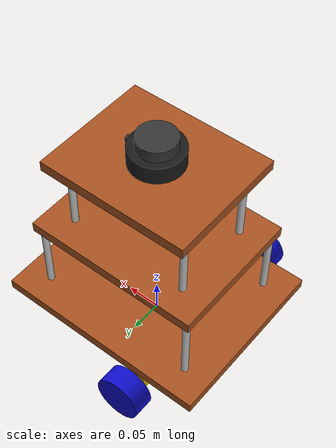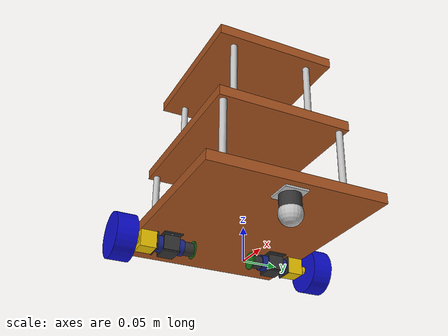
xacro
<?xml version="1.0"?>
<robot name="wobble" xmlns:xacro="http://www.ros.org/wiki/xacro">

  <!-- PARAMETERS                                                        -->

  <!-- Base layer dimensions (bottom plate) -->
  <xacro:property name="base_plate_length"    value="0.32"/>
  <xacro:property name="base_plate_width"     value="0.26"/>

  <!-- Second layer dimensions (middle plate - stepped between base and top) -->
  <xacro:property name="second_plate_length"  value="0.26"/>
  <xacro:property name="second_plate_width"   value="0.20"/>

  <!-- Top layer dimensions (third plate) -->
  <xacro:property name="top_plate_length"     value="0.22"/>
  <xacro:property name="top_plate_width"      value="0.18"/>

  <xacro:property name="plate_length"         value="${base_plate_length}"/>
  <xacro:property name="plate_width"          value="${base_plate_width}"/>
  <xacro:property name="plate_thickness"      value="0.015"/>

  <xacro:property name="layer_gap"       value="0.12"/>

  <xacro:property name="rod_radius"      value="0.005"/>

  <xacro:property name="wheel_radius"    value="0.0335"/>
  <xacro:property name="wheel_width"     value="0.03"/>

  <!-- wheel joint origin (relative to base_link) -->
  <xacro:property name="wheel_x"         value="-0.07"/>
  <xacro:property name="wheel_y"         value="0.155"/>

  <!-- laser joint origin relative to top_layer -->
  <xacro:property name="laser_x"         value="0.0"/>
  <xacro:property name="laser_y"         value="0.0"/>
  <xacro:property name="laser_z"         value="0.025"/>
  <xacro:property name="laser_roll"      value="0.0"/>
  <xacro:property name="laser_pitch"     value="0.0"/>
  <xacro:property name="laser_yaw"       value="0.0"/>

  <!-- Encoder gear DC motor dimensions (JGA25-370 pro-range style) -->
  <xacro:property name="coupler_len"     value="0.010"/>  <!-- brass shaft coupler     -->
  <xacro:property name="gearbox_y"       value="0.025"/>  <!-- gearbox depth along Y  -->
  <xacro:property name="gearbox_sq"      value="0.025"/>  <!-- gearbox W/H (square)   -->
  <xacro:property name="motor_radius"    value="0.012"/>  <!-- motor can radius        -->
  <xacro:property name="motor_len"       value="0.042"/>  <!-- motor can length        -->
  <xacro:property name="encoder_radius"  value="0.010"/>  <!-- encoder drum radius     -->
  <xacro:property name="encoder_len"     value="0.015"/>  <!-- encoder drum length     -->
  <!-- Outer face of gearbox stops at wheel inner face minus coupler_len (no overlap) -->
  <xacro:property name="gearbox_outer_y" value="${wheel_y - wheel_width/2 - coupler_len}"/>

  <!-- Motor shaft vertical offset so motors mount under the base plate -->
  <xacro:property name="motor_z"         value="${-plate_thickness/2 - gearbox_sq/2}"/>
  <!-- Height of base_link plate centre above base_footprint (ground) -->
  <xacro:property name="chassis_z"       value="${wheel_radius - motor_z}"/>
  <!-- Caster ball radius -->
  <xacro:property name="caster_radius"   value="${wheel_radius / 2.0}"/>

  <!-- MATERIALS  (RViz)                                                 -->

  <material name="wood">
    <color rgba="0.65 0.32 0.12 1"/>
  </material>

  <material name="metal">
    <color rgba="0.75 0.75 0.75 1"/>
  </material>

  <material name="blue">
    <color rgba="0.05 0.05 0.8 1"/>
  </material>

  <material name="black">
    <color rgba="0.1 0.1 0.1 1"/>
  </material>

  <material name="dark_grey">
    <color rgba="0.20 0.20 0.20 1"/>
  </material>

  <material name="yellow">
    <color rgba="0.90 0.75 0.00 1"/>
  </material>

  <material name="motor_blue">
    <color rgba="0.10 0.15 0.55 1"/>
  </material>

  <material name="pcb_purple">
    <color rgba="0.28 0.10 0.47 1"/>
  </material>

  <material name="pcb_green">
    <color rgba="0.10 0.45 0.10 1"/>
  </material>

  <!-- BASE FOOTPRINT  (REP-120 root link)                              -->
  <!-- base_link plate centre is at chassis_z height above ground       -->

  <link name="base_footprint"/>

  <joint name="base_footprint_joint" type="fixed">
    <parent link="base_footprint"/>
    <child  link="base_link"/>
    <origin xyz="0 0 ${chassis_z}" rpy="0 0 0"/>
  </joint>

  <!-- BASE LAYER                                                        -->

  <link name="base_link">

    <inertial>
      <mass value="2.0"/>
      <origin xyz="0 0 0" rpy="0 0 0"/>
      <inertia ixx="0.0416" ixy="0.0" ixz="0.0"
               iyy="0.0505" iyz="0.0"
               izz="0.0814"/>
    </inertial>

    <visual>
      <origin xyz="0 0 0" rpy="0 0 0"/>
      <geometry>
        <box size="${plate_length} ${plate_width} ${plate_thickness}"/>
      </geometry>
      <material name="wood"/>
    </visual>

    <collision>
      <origin xyz="0 0 0" rpy="0 0 0"/>
      <geometry>
        <box size="${plate_length} ${plate_width} ${plate_thickness}"/>
      </geometry>
    </collision>

  </link>

  <gazebo reference="base_link">
    <material>Gazebo/Wood</material>
  </gazebo>

  <!-- SECOND LAYER (Middle plate: 0.26 m × 0.20 m)                     -->
  <!-- Joint origin offsets it layer_gap above base_link                -->

  <link name="second_layer">

    <inertial>
      <mass value="0.85"/>
      <origin xyz="0 0 0" rpy="0 0 0"/>
      <inertia ixx="0.00285" ixy="0.0" ixz="0.0"
               iyy="0.00480" iyz="0.0"
               izz="0.00762"/>
    </inertial>

    <visual>
      <origin xyz="0 0 0" rpy="0 0 0"/>
      <geometry>
        <box size="${second_plate_length} ${second_plate_width} ${plate_thickness}"/>
      </geometry>
      <material name="wood"/>
    </visual>

    <collision>
      <origin xyz="0 0 0" rpy="0 0 0"/>
      <geometry>
        <box size="${second_plate_length} ${second_plate_width} ${plate_thickness}"/>
      </geometry>
    </collision>

  </link>

  <joint name="joint_second_layer" type="fixed">
    <parent link="base_link"/>
    <child  link="second_layer"/>
    <origin xyz="0 0 ${layer_gap}" rpy="0 0 0"/>
  </joint>

  <gazebo reference="second_layer">
    <material>Gazebo/Wood</material>
  </gazebo>

  <!-- TOP LAYER                                                         -->

  <link name="top_layer">

    <inertial>
      <mass value="0.8"/>
      <origin xyz="0 0 0" rpy="0 0 0"/>
      <inertia ixx="0.012"  ixy="0.0" ixz="0.0"
               iyy="0.0149" iyz="0.0"
               izz="0.0235"/>
    </inertial>

    <visual>
      <origin xyz="0 0 0" rpy="0 0 0"/>
      <geometry>
        <box size="${top_plate_length} ${top_plate_width} ${plate_thickness}"/>
      </geometry>
      <material name="wood"/>
    </visual>

    <collision>
      <origin xyz="0 0 0" rpy="0 0 0"/>
      <geometry>
        <box size="${top_plate_length} ${top_plate_width} ${plate_thickness}"/>
      </geometry>
    </collision>

  </link>

  <joint name="joint_top_layer" type="fixed">
    <parent link="second_layer"/>
    <child  link="top_layer"/>
    <origin xyz="0 0 ${layer_gap}" rpy="0 0 0"/>
  </joint>

  <gazebo reference="top_layer">
    <material>Gazebo/Wood</material>
  </gazebo>

  <!-- RODS                                                              -->
  <!-- Position is set via the joint origin; link geometry is at origin -->

  <xacro:macro name="rod" params="x y z length name">

    <link name="${name}">
      <inertial>
        <mass value="0.1"/>
        <origin xyz="0 0 0" rpy="0 0 0"/>
        <inertia ixx="0.00001" ixy="0.0" ixz="0.0"
                 iyy="0.00001" iyz="0.0"
                 izz="0.00001"/>
      </inertial>
      <visual>
        <origin xyz="0 0 0" rpy="0 0 0"/>
        <geometry>
          <cylinder radius="${rod_radius}" length="${length}"/>
        </geometry>
        <material name="metal"/>
      </visual>
      <collision>
        <origin xyz="0 0 0" rpy="0 0 0"/>
        <geometry>
          <cylinder radius="${rod_radius}" length="${length}"/>
        </geometry>
      </collision>
    </link>

    <joint name="joint_${name}" type="fixed">
      <parent link="base_link"/>
      <child  link="${name}"/>
      <origin xyz="${x} ${y} ${z}" rpy="0 0 0"/>
    </joint>

    <gazebo reference="${name}">
      <material>Gazebo/Grey</material>
    </gazebo>

  </xacro:macro>

  <!-- Rods layer 1->2: centre at layer_gap/2 above base_link -->
  <xacro:rod x=" 0.12" y=" 0.09" z="${layer_gap/2}" length="${layer_gap}" name="rod1"/>
  <xacro:rod x="-0.12" y=" 0.09" z="${layer_gap/2}" length="${layer_gap}" name="rod2"/>
  <xacro:rod x=" 0.12" y="-0.09" z="${layer_gap/2}" length="${layer_gap}" name="rod3"/>
  <xacro:rod x="-0.12" y="-0.09" z="${layer_gap/2}" length="${layer_gap}" name="rod4"/>

  <!-- Rods layer 2->3: centre at layer_gap + layer_gap/2 above base_link -->
  <xacro:rod x=" 0.09" y=" 0.06" z="${layer_gap + layer_gap/2}" length="${layer_gap}" name="rod5"/>
  <xacro:rod x="-0.09" y=" 0.06" z="${layer_gap + layer_gap/2}" length="${layer_gap}" name="rod6"/>
  <xacro:rod x=" 0.09" y="-0.06" z="${layer_gap + layer_gap/2}" length="${layer_gap}" name="rod7"/>
  <xacro:rod x="-0.09" y="-0.06" z="${layer_gap + layer_gap/2}" length="${layer_gap}" name="rod8"/>

  <!-- ENCODER GEAR DC MOTOR  (JGA25-370 style, pro range)              -->
  <!-- Mounted UNDER the base plate with heavy-duty mounting clamp:      -->
  <!--   1. Gearbox     — yellow square housing + brass wheel coupler    -->
  <!--   2. Motor body  — dark-blue cylindrical can                      -->
  <!--   3. Encoder     — dark-grey drum + green PCB disc at rear        -->
  <!--   4. Motor clamp — saddle clamp & flange bolted under base plate  -->
  <!-- side = +1 for left (+Y), -1 for right (-Y)                      -->

  <xacro:macro name="motor_encoder" params="prefix side">

    <!-- ── Gearbox ────────────────────────────────────────────────── -->
    <link name="${prefix}_gearbox">
      <inertial>
        <mass value="0.06"/>
        <origin xyz="0 0 0" rpy="0 0 0"/>
        <inertia ixx="0.000003" ixy="0.0" ixz="0.0"
                 iyy="0.000003" iyz="0.0"
                 izz="0.000003"/>
      </inertial>
      <!-- Square gearbox body -->
      <visual>
        <origin xyz="0 0 0" rpy="0 0 0"/>
        <geometry>
          <box size="${gearbox_sq} ${gearbox_y} ${gearbox_sq}"/>
        </geometry>
        <material name="yellow"/>
      </visual>
      <!-- Brass hex coupler connecting gearbox output shaft to wheel hub -->
      <visual>
        <origin xyz="0 ${side * (gearbox_y/2 + coupler_len/2)} 0" rpy="${pi/2} 0 0"/>
        <geometry>
          <cylinder radius="0.006" length="${coupler_len}"/>
        </geometry>
        <material name="yellow"/>
      </visual>
      <collision>
        <origin xyz="0 0 0" rpy="0 0 0"/>
        <geometry>
          <box size="${gearbox_sq} ${gearbox_y} ${gearbox_sq}"/>
        </geometry>
      </collision>
    </link>
    <joint name="${prefix}_gearbox_joint" type="fixed">
      <parent link="base_link"/>
      <child  link="${prefix}_gearbox"/>
      <origin xyz="${wheel_x} ${side * (gearbox_outer_y - gearbox_y/2)} ${motor_z}" rpy="0 0 0"/>
    </joint>

    <!-- ── Motor body ─────────────────────────────────────────────── -->
    <link name="${prefix}_motor">
      <inertial>
        <mass value="0.10"/>
        <origin xyz="0 0 0" rpy="0 0 0"/>
        <inertia ixx="0.000006" ixy="0.0" ixz="0.0"
                 iyy="0.000006" iyz="0.0"
                 izz="0.000004"/>
      </inertial>
      <visual>
        <origin xyz="0 0 0" rpy="${pi/2} 0 0"/>
        <geometry>
          <cylinder radius="${motor_radius}" length="${motor_len}"/>
        </geometry>
        <material name="motor_blue"/>
      </visual>
      <collision>
        <origin xyz="0 0 0" rpy="${pi/2} 0 0"/>
        <geometry>
          <cylinder radius="${motor_radius}" length="${motor_len}"/>
        </geometry>
      </collision>
    </link>
    <joint name="${prefix}_motor_joint" type="fixed">
      <parent link="base_link"/>
      <child  link="${prefix}_motor"/>
      <origin xyz="${wheel_x} ${side * (gearbox_outer_y - gearbox_y - motor_len/2)} ${motor_z}" rpy="0 0 0"/>
    </joint>

    <!-- ── Encoder ────────────────────────────────────────────────── -->
    <link name="${prefix}_encoder">
      <inertial>
        <mass value="0.02"/>
        <origin xyz="0 0 0" rpy="0 0 0"/>
        <inertia ixx="0.000001" ixy="0.0" ixz="0.0"
                 iyy="0.000001" iyz="0.0"
                 izz="0.000001"/>
      </inertial>
      <!-- Encoder drum -->
      <visual>
        <origin xyz="0 0 0" rpy="${pi/2} 0 0"/>
        <geometry>
          <cylinder radius="${encoder_radius}" length="${encoder_len}"/>
        </geometry>
        <material name="dark_grey"/>
      </visual>
      <!-- Encoder PCB disc (green, flush with rear face) -->
      <visual>
        <origin xyz="0 ${-side * (encoder_len/2 + 0.001)} 0" rpy="${pi/2} 0 0"/>
        <geometry>
          <cylinder radius="${encoder_radius + 0.003}" length="0.002"/>
        </geometry>
        <material name="pcb_green"/>
      </visual>
      <collision>
        <origin xyz="0 0 0" rpy="${pi/2} 0 0"/>
        <geometry>
          <cylinder radius="${encoder_radius}" length="${encoder_len}"/>
        </geometry>
      </collision>
    </link>
    <joint name="${prefix}_encoder_joint" type="fixed">
      <parent link="base_link"/>
      <child  link="${prefix}_encoder"/>
      <origin xyz="${wheel_x} ${side * (gearbox_outer_y - gearbox_y - motor_len - encoder_len/2)} ${motor_z}" rpy="0 0 0"/>
    </joint>

    <!-- ── Motor mounting clamp ───────────────────────────────────── -->
    <link name="${prefix}_motor_clamp">
      <inertial>
        <mass value="0.03"/>
        <origin xyz="0 0 0" rpy="0 0 0"/>
        <inertia ixx="0.000003" ixy="0.0" ixz="0.0"
                 iyy="0.000003" iyz="0.0"
                 izz="0.000003"/>
      </inertial>
      <!-- Upper mounting flange (flush against the underside of the wooden base plate) -->
      <visual>
        <origin xyz="0 0 ${gearbox_sq/2 - 0.001}" rpy="0 0 0"/>
        <geometry>
          <box size="0.042 0.028 0.002"/>
        </geometry>
        <material name="dark_grey"/>
      </visual>
      <!-- Front vertical clamp arm -->
      <visual>
        <origin xyz="${motor_radius + 0.001} 0 0" rpy="0 0 0"/>
        <geometry>
          <box size="0.002 0.024 0.023"/>
        </geometry>
        <material name="dark_grey"/>
      </visual>
      <!-- Rear vertical clamp arm -->
      <visual>
        <origin xyz="${-(motor_radius + 0.001)} 0 0" rpy="0 0 0"/>
        <geometry>
          <box size="0.002 0.024 0.023"/>
        </geometry>
        <material name="dark_grey"/>
      </visual>
      <!-- Bottom saddle strap wrapping under motor can -->
      <visual>
        <origin xyz="0 0 ${-(motor_radius + 0.001)}" rpy="0 0 0"/>
        <geometry>
          <box size="0.028 0.024 0.002"/>
        </geometry>
        <material name="dark_grey"/>
      </visual>
      <!-- Front fixing bolt securing clamp to base plate -->
      <visual>
        <origin xyz="0.016 0 ${gearbox_sq/2}" rpy="0 0 0"/>
        <geometry>
          <cylinder radius="0.002" length="0.004"/>
        </geometry>
        <material name="metal"/>
      </visual>
      <!-- Rear fixing bolt securing clamp to base plate -->
      <visual>
        <origin xyz="-0.016 0 ${gearbox_sq/2}" rpy="0 0 0"/>
        <geometry>
          <cylinder radius="0.002" length="0.004"/>
        </geometry>
        <material name="metal"/>
      </visual>
      <!-- Gearbox face bracket flange -->
      <visual>
        <origin xyz="0 ${side * (motor_len/2)} 0" rpy="0 0 0"/>
        <geometry>
          <box size="0.027 0.002 0.027"/>
        </geometry>
        <material name="dark_grey"/>
      </visual>
      <collision>
        <origin xyz="0 0 0" rpy="0 0 0"/>
        <geometry>
          <box size="0.042 0.028 0.027"/>
        </geometry>
      </collision>
    </link>
    <joint name="${prefix}_motor_clamp_joint" type="fixed">
      <parent link="base_link"/>
      <child  link="${prefix}_motor_clamp"/>
      <origin xyz="${wheel_x} ${side * (gearbox_outer_y - gearbox_y - motor_len/2)} ${motor_z}" rpy="0 0 0"/>
    </joint>

  </xacro:macro>

  <xacro:motor_encoder prefix="left"  side="1"/>
  <xacro:motor_encoder prefix="right" side="-1"/>

  <gazebo reference="left_motor_clamp">
    <material>Gazebo/DarkGrey</material>
  </gazebo>
  <gazebo reference="right_motor_clamp">
    <material>Gazebo/DarkGrey</material>
  </gazebo>

  <!-- LEFT WHEEL                                                        -->
  <!-- Cylinder axis along Y -> rpy="${pi/2} 0 0"                       -->

  <link name="left_wheel">

    <inertial>
      <mass value="0.3"/>
      <origin xyz="0 0 0" rpy="${pi/2} 0 0"/>
      <inertia ixx="0.00023" ixy="0.0" ixz="0.0"
               iyy="0.00023" iyz="0.0"
               izz="0.00038"/>
    </inertial>

    <visual>
      <origin xyz="0 0 0" rpy="${pi/2} 0 0"/>
      <geometry>
        <cylinder radius="${wheel_radius}" length="${wheel_width}"/>
      </geometry>
      <material name="blue"/>
    </visual>

    <collision>
      <origin xyz="0 0 0" rpy="${pi/2} 0 0"/>
      <geometry>
        <cylinder radius="${wheel_radius}" length="${wheel_width}"/>
      </geometry>
    </collision>

  </link>

  <joint name="joint_left_wheel" type="continuous">
    <parent link="base_link"/>
    <child  link="left_wheel"/>
    <!-- base_link is at height chassis_z, wheel centre is at motor_z -->
    <origin xyz="${wheel_x} ${wheel_y} ${motor_z}" rpy="0 0 0"/>
    <axis xyz="0 1 0"/>
    <dynamics damping="0.05" friction="0.0"/>
  </joint>

  <gazebo reference="left_wheel">
    <material>Gazebo/Blue</material>
    <mu1>0.8</mu1>
    <mu2>0.8</mu2>
    <kp>1e5</kp>
    <kd>100.0</kd>
  </gazebo>

  <!-- RIGHT WHEEL                                                       -->

  <link name="right_wheel">

    <inertial>
      <mass value="0.3"/>
      <origin xyz="0 0 0" rpy="${pi/2} 0 0"/>
      <inertia ixx="0.00023" ixy="0.0" ixz="0.0"
               iyy="0.00023" iyz="0.0"
               izz="0.00038"/>
    </inertial>

    <visual>
      <origin xyz="0 0 0" rpy="${pi/2} 0 0"/>
      <geometry>
        <cylinder radius="${wheel_radius}" length="${wheel_width}"/>
      </geometry>
      <material name="blue"/>
    </visual>

    <collision>
      <origin xyz="0 0 0" rpy="${pi/2} 0 0"/>
      <geometry>
        <cylinder radius="${wheel_radius}" length="${wheel_width}"/>
      </geometry>
    </collision>

  </link>

  <joint name="joint_right_wheel" type="continuous">
    <parent link="base_link"/>
    <child  link="right_wheel"/>
    <!-- base_link is at height chassis_z, wheel centre is at motor_z -->
    <origin xyz="${wheel_x} -${wheel_y} ${motor_z}" rpy="0 0 0"/>
    <axis xyz="0 1 0"/>
    <dynamics damping="0.05" friction="0.0"/>
  </joint>

  <gazebo reference="right_wheel">
    <material>Gazebo/Blue</material>
    <mu1>0.8</mu1>
    <mu2>0.8</mu2>
    <kp>1e5</kp>
    <kd>100.0</kd>
  </gazebo>

  <!-- CASTER WHEEL  (ball caster mounted under plate, zero friction)    -->

  <link name="caster">

    <inertial>
      <mass value="0.1"/>
      <origin xyz="0 0 ${-chassis_z + caster_radius}" rpy="0 0 0"/>
      <inertia ixx="0.00002" ixy="0.0" ixz="0.0"
               iyy="0.00002" iyz="0.0"
               izz="0.00002"/>
    </inertial>

    <!-- Top mounting plate bolted under the wooden base plate -->
    <visual>
      <origin xyz="0 0 ${-plate_thickness/2 - 0.0015}" rpy="0 0 0"/>
      <geometry>
        <box size="0.038 0.034 0.003"/>
      </geometry>
      <material name="metal"/>
    </visual>

    <!-- Caster body / cup housing extending down towards the ball -->
    <visual>
      <origin xyz="0 0 ${-0.024}" rpy="0 0 0"/>
      <geometry>
        <cylinder radius="0.015" length="0.026"/>
      </geometry>
      <material name="dark_grey"/>
    </visual>

    <!-- Ball caster sphere rolling on the ground -->
    <visual>
      <origin xyz="0 0 ${-chassis_z + caster_radius}" rpy="0 0 0"/>
      <geometry>
        <sphere radius="${caster_radius}"/>
      </geometry>
      <material name="metal"/>
    </visual>

    <collision>
      <origin xyz="0 0 ${-chassis_z + caster_radius}" rpy="0 0 0"/>
      <geometry>
        <sphere radius="${caster_radius}"/>
      </geometry>
    </collision>

  </link>

  <joint name="caster_joint" type="fixed">
    <parent link="base_link"/>
    <child  link="caster"/>
    <!-- Positioned at front of base plate (x = 0.13), joint origin at x=0.13, y=0, z=0 -->
    <origin xyz="0.13 0 0" rpy="0 0 0"/>
  </joint>

  <gazebo reference="caster">
    <material>Gazebo/Grey</material>
    <mu1>0.0</mu1>
    <mu2>0.0</mu2>
    <kp>1e5</kp>
    <kd>100.0</kd>
  </gazebo>

  <!-- IMU  (MPU-6050 resting and fixed on top of the base plate)       -->

  <link name="imu_link">

    <inertial>
      <mass value="0.02"/>
      <origin xyz="0 0 0.001" rpy="0 0 0"/>
      <inertia ixx="0.000002" ixy="0.0" ixz="0.0"
               iyy="0.000002" iyz="0.0"
               izz="0.000003"/>
    </inertial>

    <!-- MPU-6050 module: purple PCB ~20 × 16 mm resting flat on plate top -->
    <visual>
      <origin xyz="0 0 0.0008" rpy="0 0 0"/>
      <geometry>
        <box size="0.020 0.016 0.0016"/>
      </geometry>
      <material name="pcb_purple"/>
    </visual>
    <!-- MPU-6050 IC chip (QFN package, centred on PCB) -->
    <visual>
      <origin xyz="0.001 0 0.0022" rpy="0 0 0"/>
      <geometry>
        <box size="0.005 0.005 0.0012"/>
      </geometry>
      <material name="dark_grey"/>
    </visual>
    <!-- Header pin row (one long edge) -->
    <visual>
      <origin xyz="-0.008 0 0.0035" rpy="0 0 0"/>
      <geometry>
        <box size="0.0025 0.016 0.005"/>
      </geometry>
      <material name="metal"/>
    </visual>
    <!-- Mounting screw 1 fixing IMU to base plate -->
    <visual>
      <origin xyz="0.007 0.0055 0.0018" rpy="0 0 0"/>
      <geometry>
        <cylinder radius="0.0016" length="0.002"/>
      </geometry>
      <material name="metal"/>
    </visual>
    <!-- Mounting screw 2 fixing IMU to base plate -->
    <visual>
      <origin xyz="0.007 -0.0055 0.0018" rpy="0 0 0"/>
      <geometry>
        <cylinder radius="0.0016" length="0.002"/>
      </geometry>
      <material name="metal"/>
    </visual>

    <collision>
      <origin xyz="0 0 0.002" rpy="0 0 0"/>
      <geometry>
        <box size="0.020 0.016 0.004"/>
      </geometry>
    </collision>

  </link>

  <joint name="imu_joint" type="fixed">
    <parent link="base_link"/>
    <child  link="imu_link"/>
    <!-- Place IMU on top surface of base_link plate -->
    <origin xyz="0 0 ${plate_thickness/2}" rpy="0 0 0"/>
  </joint>

  <gazebo reference="imu_link">
    <material>Gazebo/Black</material>
  </gazebo>

  <!-- LIDAR                                                             -->

  <link name="laser">

    <inertial>
      <mass value="0.15"/>
      <origin xyz="0 0 0" rpy="0 0 0"/>
      <inertia ixx="0.00005" ixy="0.0" ixz="0.0"
               iyy="0.00005" iyz="0.0"
               izz="0.00008"/>
    </inertial>

    <!-- RPLiDAR A1 — main body (~76 mm dia × 30 mm) -->
    <visual>
      <origin xyz="0 0 -0.007" rpy="0 0 0"/>
      <geometry>
        <cylinder radius="0.038" length="0.030"/>
      </geometry>
      <material name="black"/>
    </visual>
    <!-- RPLiDAR A1 — rotating scanner head (slightly narrower, dark grey) -->
    <visual>
      <origin xyz="0 0 0.014" rpy="0 0 0"/>
      <geometry>
        <cylinder radius="0.028" length="0.020"/>
      </geometry>
      <material name="dark_grey"/>
    </visual>
    <!-- RPLiDAR A1 — USB/motor connector stub -->
    <visual>
      <origin xyz="0.042 0 -0.007" rpy="0 ${pi/2} 0"/>
      <geometry>
        <cylinder radius="0.005" length="0.010"/>
      </geometry>
      <material name="dark_grey"/>
    </visual>

    <collision>
      <origin xyz="0 0 0.004" rpy="0 0 0"/>
      <geometry>
        <cylinder radius="0.038" length="0.050"/>
      </geometry>
    </collision>

  </link>

  <joint name="laser_joint" type="fixed">
    <parent link="top_layer"/>
    <child  link="laser"/>
    <origin xyz="${laser_x} ${laser_y} ${laser_z}"
            rpy="${laser_roll} ${laser_pitch} ${laser_yaw}"/>
  </joint>

  <!-- LIDAR SENSOR — Ignition Gazebo 6 (Fortress) gpu_lidar           -->
  <!-- Bridged to /scan via ros_gz_bridge in sim.launch.py             -->
  <gazebo reference="laser">
    <material>Gazebo/Black</material>
    <sensor name="lidar" type="gpu_lidar">
      <pose>0 0 0 0 0 0</pose>
      <always_on>true</always_on>
      <visualize>true</visualize>
      <update_rate>10</update_rate>
      <lidar>
        <scan>
          <horizontal>
            <samples>360</samples>
            <resolution>1</resolution>
            <min_angle>-3.14159</min_angle>
            <max_angle>3.14159</max_angle>
          </horizontal>
        </scan>
        <range>
          <min>0.15</min>
          <max>12.0</max>
          <resolution>0.01</resolution>
        </range>
        <noise>
          <type>gaussian</type>
          <mean>0.0</mean>
          <stddev>0.01</stddev>
        </noise>
      </lidar>
      <!-- Ignition Fortress: sensor systems loaded via the model-level plugin below -->
      <!-- Topic is automatically: /world/empty/model/wobble/link/laser/sensor/lidar/scan -->
      <!-- Bridged to /scan in sim.launch.py -->
    </sensor>
  </gazebo>

  <!-- IGNITION GAZEBO 6 (FORTRESS) MODEL PLUGINS                       -->

  <gazebo>
    <!-- Differential Drive (Ignition native — no ROS wrapper needed) -->
    <!-- ros_gz_bridge in sim.launch.py bridges /cmd_vel and /odom    -->
    <plugin
      filename="libignition-gazebo6-diff-drive-system.so"
      name="ignition::gazebo::systems::DiffDrive">
      <left_joint>joint_left_wheel</left_joint>
      <right_joint>joint_right_wheel</right_joint>

      <wheel_separation>0.31</wheel_separation>
      <wheel_radius>0.0335</wheel_radius>

      <max_linear_acceleration>1.0</max_linear_acceleration>
      <min_linear_acceleration>-1.0</min_linear_acceleration>
      <max_angular_acceleration>2.0</max_angular_acceleration>
      <min_angular_acceleration>-2.0</min_angular_acceleration>

      <!-- Ignition topic names (bridged to ROS2 by ros_gz_bridge) -->
      <topic>/cmd_vel</topic>
      <odom_topic>/odom</odom_topic>
      <tf_topic>/tf</tf_topic>

      <frame_id>odom</frame_id>
      <child_frame_id>base_footprint</child_frame_id>
      <odom_publish_frequency>30</odom_publish_frequency>
    </plugin>

    <!-- Joint State Publisher (Ignition native -> bridged to /joint_states) -->
    <!-- Required so robot_state_publisher broadcasts continuous wheel TFs     -->
    <plugin
      filename="libignition-gazebo6-joint-state-publisher-system.so"
      name="ignition::gazebo::systems::JointStatePublisher">
      <topic>/joint_states</topic>
      <joint_name>joint_left_wheel</joint_name>
      <joint_name>joint_right_wheel</joint_name>
    </plugin>
  </gazebo>

</robot>
